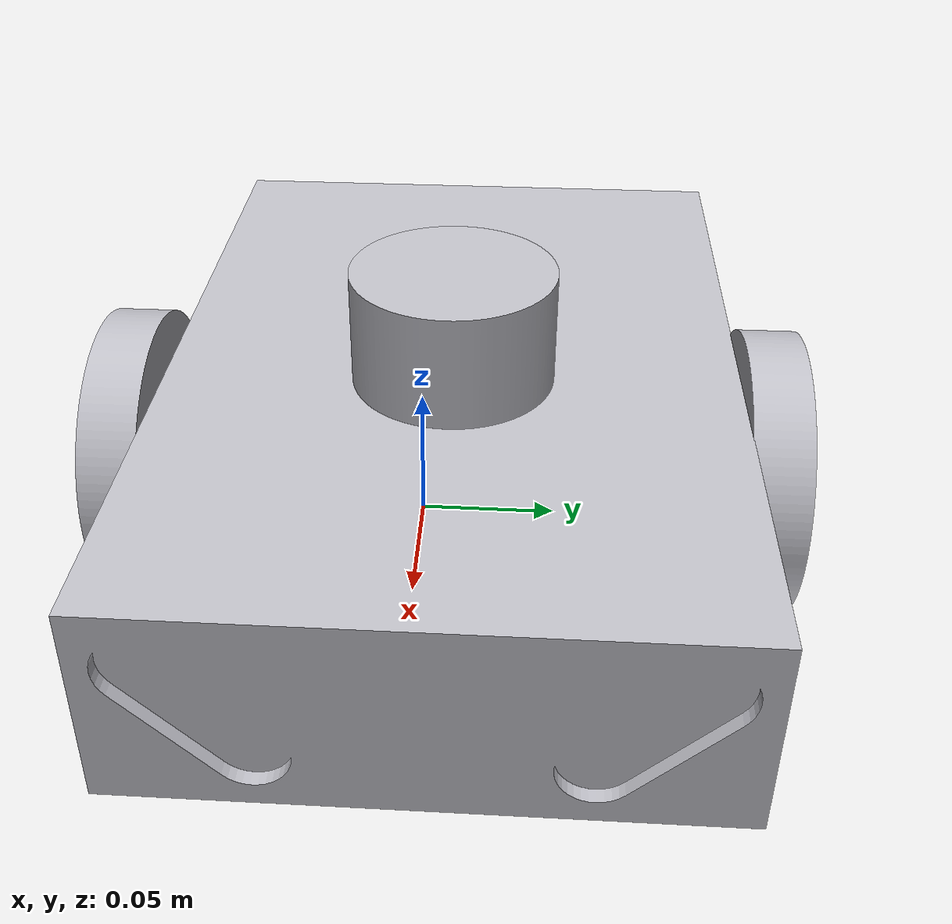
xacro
<?xml version="1.0" ?>
<robot name="amr" xmlns:xacro="http://www.ros.org/wiki/xacro">

<xacro:include filename="$(find amr_description)/urdf/materials.xacro" />
<xacro:include filename="$(find amr_description)/urdf/amr.trans" />
<xacro:include filename="$(find amr_description)/urdf/amr.gazebo" />
<link name="base_link">
  <inertial>
    <origin xyz="0.0 0.012 0.035" rpy="0 0 0"/>
    <mass value="32.96017481094388"/>
    <inertia ixx="0.122996" iyy="0.259376" izz="0.355124" ixy="-0.0" iyz="0.0" ixz="2e-06"/>
  </inertial>
  <visual>
    <origin xyz="0 0.012 0.0" rpy="0 0 0"/>
    <geometry>
      <mesh filename="file://$(find amr_description)/meshes/base_link.stl" scale="0.001 0.001 0.001"/>
    </geometry>
    <material name="silver"/>
  </visual>
  <collision>
    <origin xyz="0 0 0" rpy="0 0 0"/>
    <geometry>
      <mesh filename="file://$(find amr_description)/meshes/base_link.stl" scale="0.001 0.001 0.001"/>
    </geometry>
  </collision>
</link>

<link name="right_wheel_1">
  <inertial>
    <origin xyz="-3.0097697530789835e-07 -0.009999933496813357 -3.7212993266033667e-07" rpy="0 0 0"/>
    <mass value="1.233075116533993"/>
    <inertia ixx="0.000812" iyy="0.001541" izz="0.000812" ixy="-0.0" iyz="0.0" ixz="-0.0"/>
  </inertial>
  <visual>
    <origin xyz="0.0 0.097582 -0.033848" rpy="0 0 0"/>
    <geometry>
      <mesh filename="file://$(find amr_description)/meshes/right_wheel_1.stl" scale="0.001 0.001 0.001"/>
    </geometry>
    <material name="silver"/>
  </visual>
  <collision>
    <origin xyz="0.0 0.0 0.0" rpy="0 0 0"/>
    <geometry>
      <mesh filename="file://$(find amr_description)/meshes/right_wheel_1.stl" scale="0.001 0.001 0.001"/>
    </geometry>
  </collision>
</link>

<link name="left_wheel_1">
  <inertial>
    <origin xyz="-3.009769753183067e-07 0.010000066503187077 -3.7212993267421446e-07" rpy="0 0 0"/>
    <mass value="1.233075116533993"/>
    <inertia ixx="0.000812" iyy="0.001541" izz="0.000812" ixy="0.0" iyz="0.0" ixz="-0.0"/>
  </inertial>
  <visual>
    <origin xyz="0.0 -0.100618 -0.034532" rpy="0 0 0"/>
    <geometry>
      <mesh filename="file://$(find amr_description)/meshes/left_wheel_1.stl" scale="0.001 0.001 0.001"/>
    </geometry>
    <material name="silver"/>
  </visual>
  <collision>
    <origin xyz="0.0 0.0 0.0" rpy="0 0 0"/>
    <geometry>
      <mesh filename="file://$(find amr_description)/meshes/left_wheel_1.stl" scale="0.001 0.001 0.001"/>
    </geometry>
  </collision>
</link>

<link name="lidar_1">
  <inertial>
    <origin xyz="-3.0097697538075674e-07 6.650318698162017e-08 0.019999627870066983" rpy="0 0 0"/>
    <mass value="1.2084136142033135"/>
    <inertia ixx="0.000531" iyy="0.000531" izz="0.00074" ixy="-0.0" iyz="0.0" ixz="-0.0"/>
  </inertial>
  <visual>
    <origin xyz="0.0 0.0 -0.068832" rpy="0 0 0"/>
    <geometry>
      <mesh filename="file://$(find amr_description)/meshes/lidar_1.stl" scale="0.001 0.001 0.001"/>
    </geometry>
    <material name="silver"/>
  </visual>
  <collision>
    <origin xyz="0.0 0.0 0.0" rpy="0 0 0"/>
    <geometry>
      <mesh filename="file://$(find amr_description)/meshes/lidar_1.stl" scale="0.001 0.001 0.001"/>
    </geometry>
  </collision>
</link>

<joint name="Revolute 1" type="continuous">
  <origin xyz="0.016476 -0.087582 0.033832" rpy="0 0 0"/>
  <parent link="base_link"/>
  <child link="right_wheel_1"/>
  <axis xyz="-0.0 -1.0 -0.0"/>
</joint>

<joint name="Revolute 2" type="continuous">
  <origin xyz="0.016476 0.112418 0.033838" rpy="0 0 0"/>
  <parent link="base_link"/>
  <child link="left_wheel_1"/>
  <axis xyz="0.0 1.0 0.0"/>
</joint>

<joint name="Rigid 3" type="fixed">
  <origin xyz="0.016476 0.012418 0.068832" rpy="0 0 0"/>
  <parent link="base_link"/>
  <child link="lidar_1"/>
</joint>

</robot>

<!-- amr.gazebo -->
<robot name="amr" xmlns:xacro="http://www.ros.org/wiki/xacro" >

<xacro:property name="body_color" value="Gazebo/Silver" />

<gazebo>
  <plugin name="control" filename="libgazebo_ros_control.so"/>
</gazebo>
<gazebo reference="base_link">
  <material>${body_color}</material>
  <mu1>0.2</mu1>
  <mu2>0.2</mu2>
  <self_collide>true</self_collide>
  <gravity>true</gravity>
</gazebo>

<gazebo reference="right_wheel_1">
  <material>${body_color}</material>
  <mu1>0.2</mu1>
  <mu2>0.2</mu2>
  <self_collide>true</self_collide>
</gazebo>

<gazebo reference="left_wheel_1">
  <material>${body_color}</material>
  <mu1>0.2</mu1>
  <mu2>0.2</mu2>
  <self_collide>true</self_collide>
</gazebo>

<gazebo reference="lidar_1">
  <material>${body_color}</material>
  <mu1>0.2</mu1>
  <mu2>0.2</mu2>
  <self_collide>true</self_collide>
</gazebo>

</robot>
